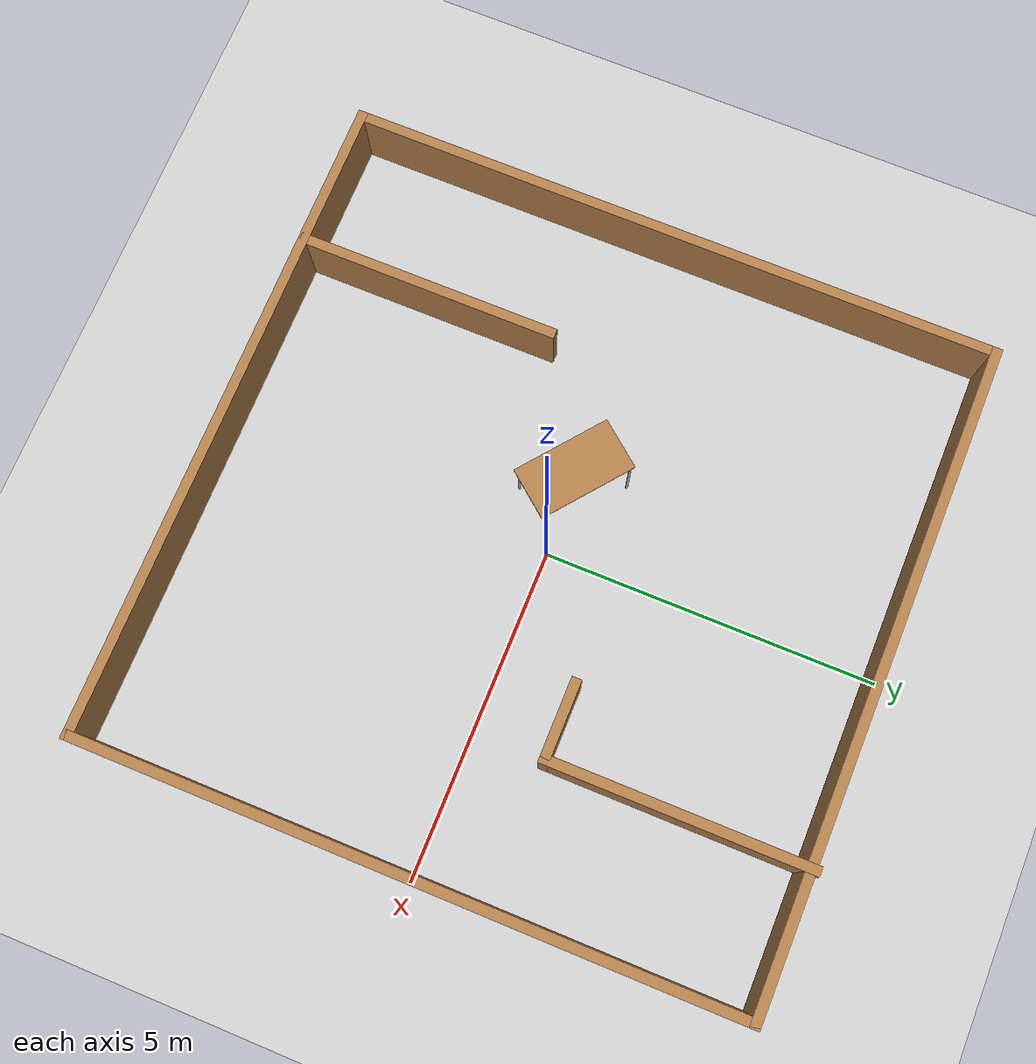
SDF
<sdf version="1.7">
 <world name="default">
  <light name="sun" type="directional">
   <pose>0 0 10 0 -0 0</pose>
   <diffuse>0.8 0.8 0.8 1</diffuse>
   <specular>0.2 0.2 0.2 1</specular>
   <attenuation>
    <range>1000</range>
    <constant>0.9</constant>
    <linear>0.01</linear>
    <quadratic>0.001</quadratic>
   </attenuation>
   <direction>-0.5 0.1 -0.9</direction>
   <spot><inner_angle>0</inner_angle><outer_angle>0</outer_angle><falloff>0</falloff></spot>
  </light>
  <model name="ground_plane">
   <static>1</static>
   <link name="link">
    <collision name="collision">
     <geometry><plane><normal>0 0 1</normal><size>100 100</size></plane></geometry>
     <surface>
      <contact><collide_bitmask>65535</collide_bitmask></contact>
      <friction><ode><mu>100</mu><mu2>50</mu2></ode></friction>
     </surface>
    </collision>
    <visual name="visual">
     <cast_shadows>0</cast_shadows>
     <geometry><plane><normal>0 0 1</normal><size>100 100</size></plane></geometry>
     <material>
      <script><uri>file://media/materials/scripts/gazebo.material</uri><name>Gazebo/Grey</name></script>
     </material>
    </visual>
   </link>
  </model>
  <gravity>0 0 -9.8</gravity>
  <magnetic_field>6e-06 2.3e-05 -4.2e-05</magnetic_field>
  <atmosphere type="adiabatic"/>
  <physics type="ode">
   <max_step_size>0.001</max_step_size>
   <real_time_factor>1</real_time_factor>
   <real_time_update_rate>1000</real_time_update_rate>
  </physics>
  <scene><ambient>0.4 0.4 0.4 1</ambient><background>0.7 0.7 0.7 1</background><shadows>1</shadows></scene>
  <spherical_coordinates>
   <surface_model>EARTH_WGS84</surface_model>
   <latitude_deg>0</latitude_deg>
   <longitude_deg>0</longitude_deg>
   <elevation>0</elevation>
   <heading_deg>0</heading_deg>
  </spherical_coordinates>
  <model name="bbot_nav_building">
   <link name="Wall_0">
    <collision name="Wall_0_Collision">
     <geometry><box><size>10 0.15 1</size></box></geometry>
     <pose>0 0 0.5 0 -0 0</pose>
    </collision>
    <visual name="Wall_0_Visual">
     <pose>0 0 0.5 0 -0 0</pose>
     <geometry><box><size>10 0.15 1</size></box></geometry>
     <material>
      <script><uri>file://media/materials/scripts/gazebo.material</uri><name>Gazebo/Wood</name></script>
      <ambient>1 1 1 1</ambient>
     </material>
     <meta><layer>0</layer></meta>
    </visual>
    <pose>-4.925 -0.027 0 0 -0 -1.5708</pose>
   </link>
   <link name="Wall_11">
    <collision name="Wall_11_Collision">
     <geometry><box><size>4 0.15 1</size></box></geometry>
     <pose>0 0 0.5 0 -0 0</pose>
    </collision>
    <visual name="Wall_11_Visual">
     <pose>0 0 0.5 0 -0 0</pose>
     <geometry><box><size>4 0.15 1</size></box></geometry>
     <material>
      <script><uri>file://media/materials/scripts/gazebo.material</uri><name>Gazebo/Wood</name></script>
      <ambient>1 1 1 1</ambient>
     </material>
     <meta><layer>0</layer></meta>
    </visual>
    <pose>-2.827 -3.019 0 0 -0 1.5708</pose>
   </link>
   <link name="Wall_13">
    <collision name="Wall_13_Collision">
     <geometry><box><size>4 0.15 1</size></box></geometry>
     <pose>0 0 0.5 0 -0 0</pose>
    </collision>
    <visual name="Wall_13_Visual">
     <pose>0 0 0.5 0 -0 0</pose>
     <geometry><box><size>4 0.15 1</size></box></geometry>
     <material>
      <script><uri>file://media/materials/scripts/gazebo.material</uri><name>Gazebo/Wood</name></script>
      <ambient>1 1 1 1</ambient>
     </material>
     <meta><layer>0</layer></meta>
    </visual>
    <pose>2.811 3.027 0 0 -0 -1.5708</pose>
   </link>
   <link name="Wall_14">
    <collision name="Wall_14_Collision">
     <geometry><box><size>1.25 0.15 1</size></box></geometry>
     <pose>0 0 0.5 0 -0 0</pose>
    </collision>
    <visual name="Wall_14_Visual">
     <pose>0 0 0.5 0 -0 0</pose>
     <geometry><box><size>1.25 0.15 1</size></box></geometry>
     <material>
      <script><uri>file://media/materials/scripts/gazebo.material</uri><name>Gazebo/Wood</name></script>
      <ambient>1 1 1 1</ambient>
     </material>
     <meta><layer>0</layer></meta>
    </visual>
    <pose>2.261 1.102 0 0 -0 3.14159</pose>
   </link>
   <link name="Wall_7">
    <collision name="Wall_7_Collision">
     <geometry><box><size>10 0.15 1</size></box></geometry>
     <pose>0 0 0.5 0 -0 0</pose>
    </collision>
    <visual name="Wall_7_Visual">
     <pose>0 0 0.5 0 -0 0</pose>
     <geometry><box><size>10 0.15 1</size></box></geometry>
     <material>
      <script><uri>file://media/materials/scripts/gazebo.material</uri><name>Gazebo/Wood</name></script>
      <ambient>1 1 1 1</ambient>
     </material>
     <meta><layer>0</layer></meta>
    </visual>
    <pose>-0 -4.952 0 0 -0 0</pose>
   </link>
   <link name="Wall_8">
    <collision name="Wall_8_Collision">
     <geometry><box><size>10 0.15 1</size></box></geometry>
     <pose>0 0 0.5 0 -0 0</pose>
    </collision>
    <visual name="Wall_8_Visual">
     <pose>0 0 0.5 0 -0 0</pose>
     <geometry><box><size>10 0.15 1</size></box></geometry>
     <material>
      <script><uri>file://media/materials/scripts/gazebo.material</uri><name>Gazebo/Wood</name></script>
      <ambient>1 1 1 1</ambient>
     </material>
     <meta><layer>0</layer></meta>
    </visual>
    <pose>4.925 -0.027 0 0 -0 1.5708</pose>
   </link>
   <link name="Wall_9">
    <collision name="Wall_9_Collision">
     <geometry><box><size>10 0.15 1</size></box></geometry>
     <pose>0 0 0.5 0 -0 0</pose>
    </collision>
    <visual name="Wall_9_Visual">
     <pose>0 0 0.5 0 -0 0</pose>
     <geometry><box><size>10 0.15 1</size></box></geometry>
     <material>
      <script><uri>file://media/materials/scripts/gazebo.material</uri><name>Gazebo/Wood</name></script>
      <ambient>1 1 1 1</ambient>
     </material>
     <meta><layer>0</layer></meta>
    </visual>
    <pose>-0 4.898 0 0 -0 3.14159</pose>
   </link>
   <static>1</static>
  </model>
  <model name="table">
   <static>1</static>
   <link name="link">
    <collision name="surface">
     <pose>0 0 1 0 -0 0</pose>
     <geometry><box><size>1.5 0.8 0.03</size></box></geometry>
     <surface><friction><ode><mu>0.6</mu><mu2>0.6</mu2></ode></friction></surface>
    </collision>
    <visual name="visual1">
     <pose>0 0 1 0 -0 0</pose>
     <geometry><box><size>1.5 0.8 0.03</size></box></geometry>
     <material>
      <script><uri>file://media/materials/scripts/gazebo.material</uri><name>Gazebo/Wood</name></script>
     </material>
    </visual>
    <collision name="front_left_leg">
     <pose>0.68 0.38 0.5 0 -0 0</pose>
     <geometry><cylinder><radius>0.02</radius><length>1</length></cylinder></geometry>
    </collision>
    <visual name="front_left_leg">
     <pose>0.68 0.38 0.5 0 -0 0</pose>
     <geometry><cylinder><radius>0.02</radius><length>1</length></cylinder></geometry>
     <material>
      <script><uri>file://media/materials/scripts/gazebo.material</uri><name>Gazebo/Grey</name></script>
     </material>
    </visual>
    <collision name="front_right_leg">
     <pose>0.68 -0.38 0.5 0 -0 0</pose>
     <geometry><cylinder><radius>0.02</radius><length>1</length></cylinder></geometry>
    </collision>
    <visual name="front_right_leg">
     <pose>0.68 -0.38 0.5 0 -0 0</pose>
     <geometry><cylinder><radius>0.02</radius><length>1</length></cylinder></geometry>
     <material>
      <script><uri>file://media/materials/scripts/gazebo.material</uri><name>Gazebo/Grey</name></script>
     </material>
    </visual>
    <collision name="back_right_leg">
     <pose>-0.68 -0.38 0.5 0 -0 0</pose>
     <geometry><cylinder><radius>0.02</radius><length>1</length></cylinder></geometry>
    </collision>
    <visual name="back_right_leg">
     <pose>-0.68 -0.38 0.5 0 -0 0</pose>
     <geometry><cylinder><radius>0.02</radius><length>1</length></cylinder></geometry>
     <material>
      <script><uri>file://media/materials/scripts/gazebo.material</uri><name>Gazebo/Grey</name></script>
     </material>
    </visual>
    <collision name="back_left_leg">
     <pose>-0.68 0.38 0.5 0 -0 0</pose>
     <geometry><cylinder><radius>0.02</radius><length>1</length></cylinder></geometry>
    </collision>
    <visual name="back_left_leg">
     <pose>-0.68 0.38 0.5 0 -0 0</pose>
     <geometry><cylinder><radius>0.02</radius><length>1</length></cylinder></geometry>
     <material>
      <script><uri>file://media/materials/scripts/gazebo.material</uri><name>Gazebo/Grey</name></script>
     </material>
    </visual>
   </link>
   <pose>-1.07648 -0.023786 0 0 0 -0.67262</pose>
  </model>
 </world>
</sdf>
